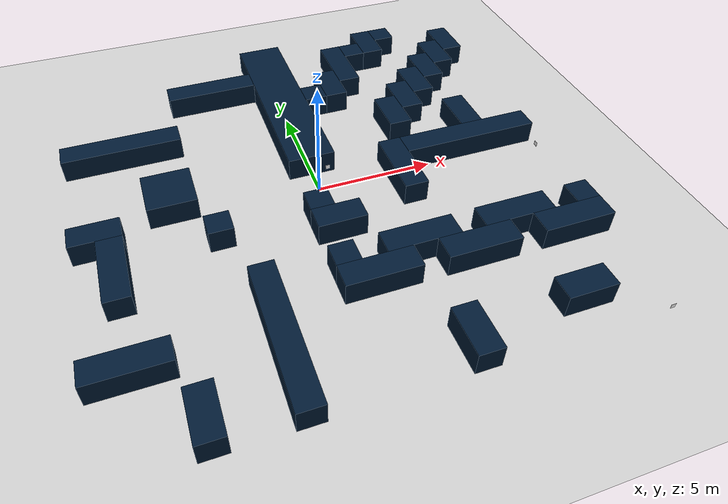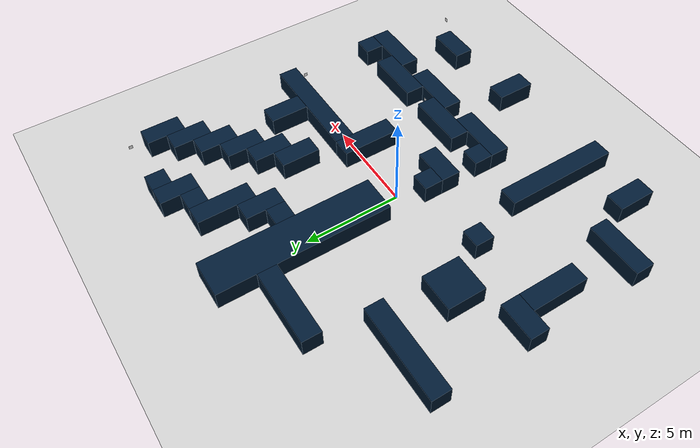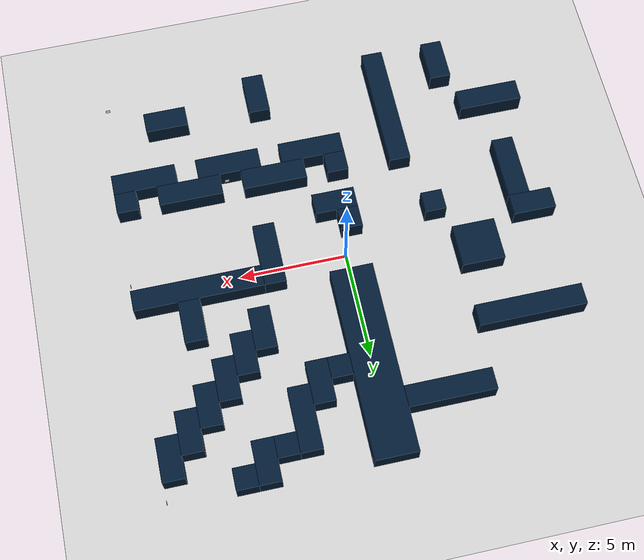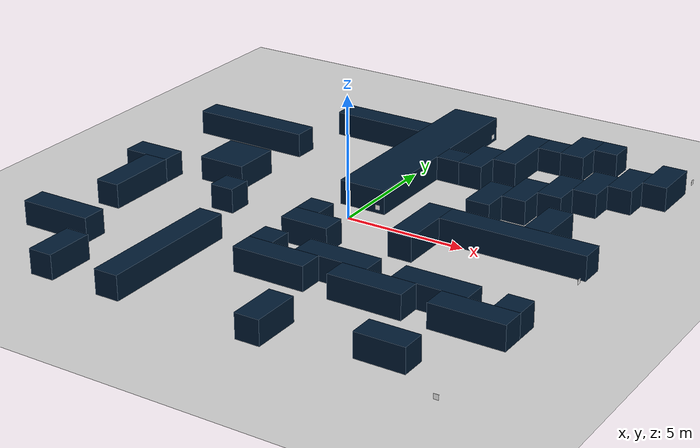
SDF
<sdf version="1.8">
 <world name="maze">
  <include><uri>https://fuel.gazebosim.org/1.0/OpenRobotics/models/Ground Plane</uri></include>
  <model name="obstacles">
   <pose>0 0 0.5 0 0 0</pose>
   <static>true</static>
   <link name="wall1">
    <pose>-6.5 -9 0 0 0 0</pose>
    <static>true</static>
    <collision name="wall1_collision"><geometry><box><size>1 2 1</size></box></geometry></collision>
    <visual name="wall1_visual">
     <geometry><box><size>1 2 1</size></box></geometry>
     <material>
      <ambient>0.1 0.1 0.1 1</ambient>
      <diffuse>0 0.1 0.2 1</diffuse>
      <specular>0 0.01 0.05 1</specular>
     </material>
    </visual>
   </link>
   <link name="wall2">
    <pose>-8.5 -6.5 0 0 0 0</pose>
    <static>true</static>
    <collision name="wall2_collision"><geometry><box><size>3 1 1</size></box></geometry></collision>
    <visual name="wall2_visual">
     <geometry><box><size>3 1 1</size></box></geometry>
     <material>
      <ambient>0.1 0.1 0.1 1</ambient>
      <diffuse>0 0.1 0.2 1</diffuse>
      <specular>0 0.01 0.05 1</specular>
     </material>
    </visual>
   </link>
   <link name="wall3">
    <pose>-3.5 -7 0 0 0 0</pose>
    <static>true</static>
    <collision name="wall3_collision"><geometry><box><size>1 6 1</size></box></geometry></collision>
    <visual name="wall3_visual">
     <geometry><box><size>1 6 1</size></box></geometry>
     <material>
      <ambient>0.1 0.1 0.1 1</ambient>
      <diffuse>0 0.1 0.2 1</diffuse>
      <specular>0 0.01 0.05 1</specular>
     </material>
    </visual>
   </link>
   <link name="wall4">
    <pose>2.5 -9 0 0 0 0</pose>
    <static>true</static>
    <collision name="wall4_collision"><geometry><box><size>1 2 1</size></box></geometry></collision>
    <visual name="wall4_visual">
     <geometry><box><size>1 2 1</size></box></geometry>
     <material>
      <ambient>0.1 0.1 0.1 1</ambient>
      <diffuse>0 0.1 0.2 1</diffuse>
      <specular>0 0.01 0.05 1</specular>
     </material>
    </visual>
   </link>
   <link name="wall5">
    <pose>7 -8.5 0 0 0 0</pose>
    <static>true</static>
    <collision name="wall5_collision"><geometry><box><size>2 1 1</size></box></geometry></collision>
    <visual name="wall5_visual">
     <geometry><box><size>2 1 1</size></box></geometry>
     <material>
      <ambient>0.1 0.1 0.1 1</ambient>
      <diffuse>0 0.1 0.2 1</diffuse>
      <specular>0 0.01 0.05 1</specular>
     </material>
    </visual>
   </link>
   <link name="wall6">
    <pose>-9 -0.5 0 0 0 0</pose>
    <static>true</static>
    <collision name="wall6_collision"><geometry><box><size>2 1 1</size></box></geometry></collision>
    <visual name="wall6_visual">
     <geometry><box><size>2 1 1</size></box></geometry>
     <material>
      <ambient>0.1 0.1 0.1 1</ambient>
      <diffuse>0 0.1 0.2 1</diffuse>
      <specular>0 0.01 0.05 1</specular>
     </material>
    </visual>
   </link>
   <link name="wall7">
    <pose>-8.5 -2.5 0 0 0 0</pose>
    <static>true</static>
    <collision name="wall7_collision"><geometry><box><size>1 3 1</size></box></geometry></collision>
    <visual name="wall7_visual">
     <geometry><box><size>1 3 1</size></box></geometry>
     <material>
      <ambient>0.1 0.1 0.1 1</ambient>
      <diffuse>0 0.1 0.2 1</diffuse>
      <specular>0 0.01 0.05 1</specular>
     </material>
    </visual>
   </link>
   <link name="wall8">
    <pose>-4.5 -1.5 0 0 0 0</pose>
    <static>true</static>
    <collision name="wall8_collision"><geometry><box><size>1 1 1</size></box></geometry></collision>
    <visual name="wall8_visual">
     <geometry><box><size>1 1 1</size></box></geometry>
     <material>
      <ambient>0.1 0.1 0.1 1</ambient>
      <diffuse>0 0.1 0.2 1</diffuse>
      <specular>0 0.01 0.05 1</specular>
     </material>
    </visual>
   </link>
   <link name="wall9">
    <pose>-6 1 0 0 0 0</pose>
    <static>true</static>
    <collision name="wall9_collision"><geometry><box><size>2 2 1</size></box></geometry></collision>
    <visual name="wall9_visual">
     <geometry><box><size>2 2 1</size></box></geometry>
     <material>
      <ambient>0.1 0.1 0.1 1</ambient>
      <diffuse>0 0.1 0.2 1</diffuse>
      <specular>0 0.01 0.05 1</specular>
     </material>
    </visual>
   </link>
   <link name="wall10">
    <pose>-7.5 4.5 0 0 0 0</pose>
    <static>true</static>
    <collision name="wall10_collision"><geometry><box><size>5 1 1</size></box></geometry></collision>
    <visual name="wall10_visual">
     <geometry><box><size>5 1 1</size></box></geometry>
     <material>
      <ambient>0.1 0.1 0.1 1</ambient>
      <diffuse>0 0.1 0.2 1</diffuse>
      <specular>0 0.01 0.05 1</specular>
     </material>
    </visual>
   </link>
   <link name="wall11">
    <pose>-3 7.5 0 0 0 0</pose>
    <static>true</static>
    <collision name="wall11_collision"><geometry><box><size>4 1 1</size></box></geometry></collision>
    <visual name="wall11_visual">
     <geometry><box><size>4 1 1</size></box></geometry>
     <material>
      <ambient>0.1 0.1 0.1 1</ambient>
      <diffuse>0 0.1 0.2 1</diffuse>
      <specular>0 0.01 0.05 1</specular>
     </material>
    </visual>
   </link>
   <link name="wall12">
    <pose>0 5.5 0 0 0 0</pose>
    <static>true</static>
    <collision name="wall12_collision"><geometry><box><size>2 9 1</size></box></geometry></collision>
    <visual name="wall12_visual">
     <geometry><box><size>2 9 1</size></box></geometry>
     <material>
      <ambient>0.1 0.1 0.1 1</ambient>
      <diffuse>0 0.1 0.2 1</diffuse>
      <specular>0 0.01 0.05 1</specular>
     </material>
    </visual>
   </link>
   <link name="wall13">
    <pose>0 -2.5 0 0 0 0</pose>
    <static>true</static>
    <collision name="wall13_collision"><geometry><box><size>2 1 1</size></box></geometry></collision>
    <visual name="wall13_visual">
     <geometry><box><size>2 1 1</size></box></geometry>
     <material>
      <ambient>0.1 0.1 0.1 1</ambient>
      <diffuse>0 0.1 0.2 1</diffuse>
      <specular>0 0.01 0.05 1</specular>
     </material>
    </visual>
   </link>
   <link name="wall14">
    <pose>-0.5 -1.5 0 0 0 0</pose>
    <static>true</static>
    <collision name="wall14_collision"><geometry><box><size>1 1 1</size></box></geometry></collision>
    <visual name="wall14_visual">
     <geometry><box><size>1 1 1</size></box></geometry>
     <material>
      <ambient>0.1 0.1 0.1 1</ambient>
      <diffuse>0 0.1 0.2 1</diffuse>
      <specular>0 0.01 0.05 1</specular>
     </material>
    </visual>
   </link>
   <link name="wall15">
    <pose>-0.5 -4.5 0 0 0 0</pose>
    <static>true</static>
    <collision name="wall15_collision"><geometry><box><size>1 1 1</size></box></geometry></collision>
    <visual name="wall15_visual">
     <geometry><box><size>1 1 1</size></box></geometry>
     <material>
      <ambient>0.1 0.1 0.1 1</ambient>
      <diffuse>0 0.1 0.2 1</diffuse>
      <specular>0 0.01 0.05 1</specular>
     </material>
    </visual>
   </link>
   <link name="wall16">
    <pose>0.5 -5.5 0 0 0 0</pose>
    <static>true</static>
    <collision name="wall16_collision"><geometry><box><size>3 1 1</size></box></geometry></collision>
    <visual name="wall16_visual">
     <geometry><box><size>3 1 1</size></box></geometry>
     <material>
      <ambient>0.1 0.1 0.1 1</ambient>
      <diffuse>0 0.1 0.2 1</diffuse>
      <specular>0 0.01 0.05 1</specular>
     </material>
    </visual>
   </link>
   <link name="wall17">
    <pose>2.5 -4.5 0 0 0 0</pose>
    <static>true</static>
    <collision name="wall17_collision"><geometry><box><size>3 1 1</size></box></geometry></collision>
    <visual name="wall17_visual">
     <geometry><box><size>3 1 1</size></box></geometry>
     <material>
      <ambient>0.1 0.1 0.1 1</ambient>
      <diffuse>0 0.1 0.2 1</diffuse>
      <specular>0 0.01 0.05 1</specular>
     </material>
    </visual>
   </link>
   <link name="wall18">
    <pose>4.5 -5.5 0 0 0 0</pose>
    <static>true</static>
    <collision name="wall18_collision"><geometry><box><size>3 1 1</size></box></geometry></collision>
    <visual name="wall18_visual">
     <geometry><box><size>3 1 1</size></box></geometry>
     <material>
      <ambient>0.1 0.1 0.1 1</ambient>
      <diffuse>0 0.1 0.2 1</diffuse>
      <specular>0 0.01 0.05 1</specular>
     </material>
    </visual>
   </link>
   <link name="wall19">
    <pose>6.5 -4.5 0 0 0 0</pose>
    <static>true</static>
    <collision name="wall19_collision"><geometry><box><size>3 1 1</size></box></geometry></collision>
    <visual name="wall19_visual">
     <geometry><box><size>3 1 1</size></box></geometry>
     <material>
      <ambient>0.1 0.1 0.1 1</ambient>
      <diffuse>0 0.1 0.2 1</diffuse>
      <specular>0 0.01 0.05 1</specular>
     </material>
    </visual>
   </link>
   <link name="wall20">
    <pose>8.5 -5.5 0 0 0 0</pose>
    <static>true</static>
    <collision name="wall20_collision"><geometry><box><size>3 1 1</size></box></geometry></collision>
    <visual name="wall20_visual">
     <geometry><box><size>3 1 1</size></box></geometry>
     <material>
      <ambient>0.1 0.1 0.1 1</ambient>
      <diffuse>0 0.1 0.2 1</diffuse>
      <specular>0 0.01 0.05 1</specular>
     </material>
    </visual>
   </link>
   <link name="wall21">
    <pose>9.5 -4.5 0 0 0 0</pose>
    <static>true</static>
    <collision name="wall21_collision"><geometry><box><size>1 1 1</size></box></geometry></collision>
    <visual name="wall21_visual">
     <geometry><box><size>1 1 1</size></box></geometry>
     <material>
      <ambient>0.1 0.1 0.1 1</ambient>
      <diffuse>0 0.1 0.2 1</diffuse>
      <specular>0 0.01 0.05 1</specular>
     </material>
    </visual>
   </link>
   <link name="wall22">
    <pose>3.5 -0.5 0 0 0 0</pose>
    <static>true</static>
    <collision name="wall22_collision"><geometry><box><size>1 3 1</size></box></geometry></collision>
    <visual name="wall22_visual">
     <geometry><box><size>1 3 1</size></box></geometry>
     <material>
      <ambient>0.1 0.1 0.1 1</ambient>
      <diffuse>0 0.1 0.2 1</diffuse>
      <specular>0 0.01 0.05 1</specular>
     </material>
    </visual>
   </link>
   <link name="wall23">
    <pose>7 0.5 0 0 0 0</pose>
    <static>true</static>
    <collision name="wall23_collision"><geometry><box><size>6 1 1</size></box></geometry></collision>
    <visual name="wall23_visual">
     <geometry><box><size>6 1 1</size></box></geometry>
     <material>
      <ambient>0.1 0.1 0.1 1</ambient>
      <diffuse>0 0.1 0.2 1</diffuse>
      <specular>0 0.01 0.05 1</specular>
     </material>
    </visual>
   </link>
   <link name="wall24">
    <pose>7.5 2 0 0 0 0</pose>
    <static>true</static>
    <collision name="wall24_collision"><geometry><box><size>1 2 1</size></box></geometry></collision>
    <visual name="wall24_visual">
     <geometry><box><size>1 2 1</size></box></geometry>
     <material>
      <ambient>0.1 0.1 0.1 1</ambient>
      <diffuse>0 0.1 0.2 1</diffuse>
      <specular>0 0.01 0.05 1</specular>
     </material>
    </visual>
   </link>
   <link name="wall25">
    <pose>1.5 5.5 0 0 0 0</pose>
    <static>true</static>
    <collision name="wall25_collision"><geometry><box><size>1 1 1</size></box></geometry></collision>
    <visual name="wall25_visual">
     <geometry><box><size>1 1 1</size></box></geometry>
     <material>
      <ambient>0.1 0.1 0.1 1</ambient>
      <diffuse>0 0.1 0.2 1</diffuse>
      <specular>0 0.01 0.05 1</specular>
     </material>
    </visual>
   </link>
   <link name="wall26">
    <pose>2.5 6 0 0 0 0</pose>
    <static>true</static>
    <collision name="wall26_collision"><geometry><box><size>1 2 1</size></box></geometry></collision>
    <visual name="wall26_visual">
     <geometry><box><size>1 2 1</size></box></geometry>
     <material>
      <ambient>0.1 0.1 0.1 1</ambient>
      <diffuse>0 0.1 0.2 1</diffuse>
      <specular>0 0.01 0.05 1</specular>
     </material>
    </visual>
   </link>
   <link name="wall27">
    <pose>3.5 7.5 0 0 0 0</pose>
    <static>true</static>
    <collision name="wall27_collision"><geometry><box><size>1 3 1</size></box></geometry></collision>
    <visual name="wall27_visual">
     <geometry><box><size>1 3 1</size></box></geometry>
     <material>
      <ambient>0.1 0.1 0.1 1</ambient>
      <diffuse>0 0.1 0.2 1</diffuse>
      <specular>0 0.01 0.05 1</specular>
     </material>
    </visual>
   </link>
   <link name="wall28">
    <pose>4.5 8.5 0 0 0 0</pose>
    <static>true</static>
    <collision name="wall28_collision"><geometry><box><size>1 1 1</size></box></geometry></collision>
    <visual name="wall28_visual">
     <geometry><box><size>1 1 1</size></box></geometry>
     <material>
      <ambient>0.1 0.1 0.1 1</ambient>
      <diffuse>0 0.1 0.2 1</diffuse>
      <specular>0 0.01 0.05 1</specular>
     </material>
    </visual>
   </link>
   <link name="wall29">
    <pose>5.5 9 0 0 0 0</pose>
    <static>true</static>
    <collision name="wall29_collision"><geometry><box><size>1 2 1</size></box></geometry></collision>
    <visual name="wall29_visual">
     <geometry><box><size>1 2 1</size></box></geometry>
     <material>
      <ambient>0.1 0.1 0.1 1</ambient>
      <diffuse>0 0.1 0.2 1</diffuse>
      <specular>0 0.01 0.05 1</specular>
     </material>
    </visual>
   </link>
   <link name="wall30">
    <pose>6.5 9.5 0 0 0 0</pose>
    <static>true</static>
    <collision name="wall30_collision"><geometry><box><size>1 1 1</size></box></geometry></collision>
    <visual name="wall30_visual">
     <geometry><box><size>1 1 1</size></box></geometry>
     <material>
      <ambient>0.1 0.1 0.1 1</ambient>
      <diffuse>0 0.1 0.2 1</diffuse>
      <specular>0 0.01 0.05 1</specular>
     </material>
    </visual>
   </link>
   <link name="wall31">
    <pose>4.5 3 0 0 0 0</pose>
    <static>true</static>
    <collision name="wall31_collision"><geometry><box><size>1 2 1</size></box></geometry></collision>
    <visual name="wall31_visual">
     <geometry><box><size>1 2 1</size></box></geometry>
     <material>
      <ambient>0.1 0.1 0.1 1</ambient>
      <diffuse>0 0.1 0.2 1</diffuse>
      <specular>0 0.01 0.05 1</specular>
     </material>
    </visual>
   </link>
   <link name="wall32">
    <pose>5.5 4 0 0 0 0</pose>
    <static>true</static>
    <collision name="wall32_collision"><geometry><box><size>1 2 1</size></box></geometry></collision>
    <visual name="wall32_visual">
     <geometry><box><size>1 2 1</size></box></geometry>
     <material>
      <ambient>0.1 0.1 0.1 1</ambient>
      <diffuse>0 0.1 0.2 1</diffuse>
      <specular>0 0.01 0.05 1</specular>
     </material>
    </visual>
   </link>
   <link name="wall33">
    <pose>6.5 5 0 0 0 0</pose>
    <static>true</static>
    <collision name="wall33_collision"><geometry><box><size>1 2 1</size></box></geometry></collision>
    <visual name="wall33_visual">
     <geometry><box><size>1 2 1</size></box></geometry>
     <material>
      <ambient>0.1 0.1 0.1 1</ambient>
      <diffuse>0 0.1 0.2 1</diffuse>
      <specular>0 0.01 0.05 1</specular>
     </material>
    </visual>
   </link>
   <link name="wall34">
    <pose>7.5 6 0 0 0 0</pose>
    <static>true</static>
    <collision name="wall34_collision"><geometry><box><size>1 2 1</size></box></geometry></collision>
    <visual name="wall34_visual">
     <geometry><box><size>1 2 1</size></box></geometry>
     <material>
      <ambient>0.1 0.1 0.1 1</ambient>
      <diffuse>0 0.1 0.2 1</diffuse>
      <specular>0 0.01 0.05 1</specular>
     </material>
    </visual>
   </link>
   <link name="wall35">
    <pose>8.5 7 0 0 0 0</pose>
    <static>true</static>
    <collision name="wall35_collision"><geometry><box><size>1 2 1</size></box></geometry></collision>
    <visual name="wall35_visual">
     <geometry><box><size>1 2 1</size></box></geometry>
     <material>
      <ambient>0.1 0.1 0.1 1</ambient>
      <diffuse>0 0.1 0.2 1</diffuse>
      <specular>0 0.01 0.05 1</specular>
     </material>
    </visual>
   </link>
   <link name="wall36">
    <pose>9.5 8 0 0 0 0</pose>
    <static>true</static>
    <collision name="wall36_collision"><geometry><box><size>1 2 1</size></box></geometry></collision>
    <visual name="wall36_visual">
     <geometry><box><size>1 2 1</size></box></geometry>
     <material>
      <ambient>0.1 0.1 0.1 1</ambient>
      <diffuse>0 0.1 0.2 1</diffuse>
      <specular>0 0.01 0.05 1</specular>
     </material>
    </visual>
   </link>
  </model>
  <model name="Apriltag36_11_00001">
   <static>1</static>
   <pose>1.006 9.700 0.240 0.000000 1.570796 0.000000</pose>
   <link name="main">
    <visual name="main_Visual">
     <cast_shadows>0</cast_shadows>
     <geometry><box><size>0.2 0.2 0.005</size></box></geometry>
     <material>
      <ambient>1 1 1 1</ambient>
      <diffuse>1 1 1 1</diffuse>
      <specular>0.5 0.5 0.5 1</specular>
      <pbr>
       <metal>
        <albedo_map>model://Apriltag36_11_00001/materials/textures/tag36_11_00001.png</albedo_map>
        <roughness>0.5</roughness>
        <metalness>0.0</metalness>
       </metal>
      </pbr>
     </material>
    </visual>
   </link>
  </model>
  <model name="Apriltag36_11_00002">
   <static>1</static>
   <pose>9.994 9.700 0.240 0.000000 1.570796 3.141593</pose>
   <link name="main">
    <visual name="main_Visual">
     <cast_shadows>0</cast_shadows>
     <geometry><box><size>0.2 0.2 0.005</size></box></geometry>
     <material>
      <ambient>1 1 1 1</ambient>
      <diffuse>1 1 1 1</diffuse>
      <specular>0.5 0.5 0.5 1</specular>
      <pbr>
       <metal>
        <albedo_map>model://Apriltag36_11_00002/materials/textures/tag36_11_00002.png</albedo_map>
        <roughness>0.5</roughness>
        <metalness>0.0</metalness>
       </metal>
      </pbr>
     </material>
    </visual>
   </link>
  </model>
  <model name="Apriltag36_11_00004">
   <static>1</static>
   <pose>0.700 0.994 0.240 0.000000 1.570796 -1.570796</pose>
   <link name="main">
    <visual name="main_Visual">
     <cast_shadows>0</cast_shadows>
     <geometry><box><size>0.2 0.2 0.005</size></box></geometry>
     <material>
      <ambient>1 1 1 1</ambient>
      <diffuse>1 1 1 1</diffuse>
      <specular>0.5 0.5 0.5 1</specular>
      <pbr>
       <metal>
        <albedo_map>model://Apriltag36_11_00004/materials/textures/tag36_11_00004.png</albedo_map>
        <roughness>0.5</roughness>
        <metalness>0.0</metalness>
       </metal>
      </pbr>
     </material>
    </visual>
   </link>
  </model>
  <model name="Apriltag36_11_00005">
   <static>1</static>
   <pose>9.994 -0.550 0.240 0.000000 1.570796 3.141593</pose>
   <link name="main">
    <visual name="main_Visual">
     <cast_shadows>0</cast_shadows>
     <geometry><box><size>0.2 0.2 0.005</size></box></geometry>
     <material>
      <ambient>1 1 1 1</ambient>
      <diffuse>1 1 1 1</diffuse>
      <specular>0.5 0.5 0.5 1</specular>
      <pbr>
       <metal>
        <albedo_map>model://Apriltag36_11_00005/materials/textures/tag36_11_00005.png</albedo_map>
        <roughness>0.5</roughness>
        <metalness>0.0</metalness>
       </metal>
      </pbr>
     </material>
    </visual>
   </link>
  </model>
  <model name="Apriltag36_11_00007">
   <static>1</static>
   <pose>4.700 -4.994 0.240 0.000000 1.570796 1.570796</pose>
   <link name="main">
    <visual name="main_Visual">
     <cast_shadows>0</cast_shadows>
     <geometry><box><size>0.2 0.2 0.005</size></box></geometry>
     <material>
      <ambient>1 1 1 1</ambient>
      <diffuse>1 1 1 1</diffuse>
      <specular>0.5 0.5 0.5 1</specular>
      <pbr>
       <metal>
        <albedo_map>model://Apriltag36_11_00007/materials/textures/tag36_11_00007.png</albedo_map>
        <roughness>0.5</roughness>
        <metalness>0.0</metalness>
       </metal>
      </pbr>
     </material>
    </visual>
   </link>
  </model>
  <model name="Apriltag36_11_00010">
   <static>1</static>
   <pose>9.700 -9.994 0.240 0.000000 1.570796 1.570796</pose>
   <link name="main">
    <visual name="main_Visual">
     <cast_shadows>0</cast_shadows>
     <geometry><box><size>0.2 0.2 0.005</size></box></geometry>
     <material>
      <ambient>1 1 1 1</ambient>
      <diffuse>1 1 1 1</diffuse>
      <specular>0.5 0.5 0.5 1</specular>
      <pbr>
       <metal>
        <albedo_map>model://Apriltag36_11_00010/materials/textures/tag36_11_00010.png</albedo_map>
        <roughness>0.5</roughness>
        <metalness>0.0</metalness>
       </metal>
      </pbr>
     </material>
    </visual>
   </link>
  </model>
 </world>
</sdf>
